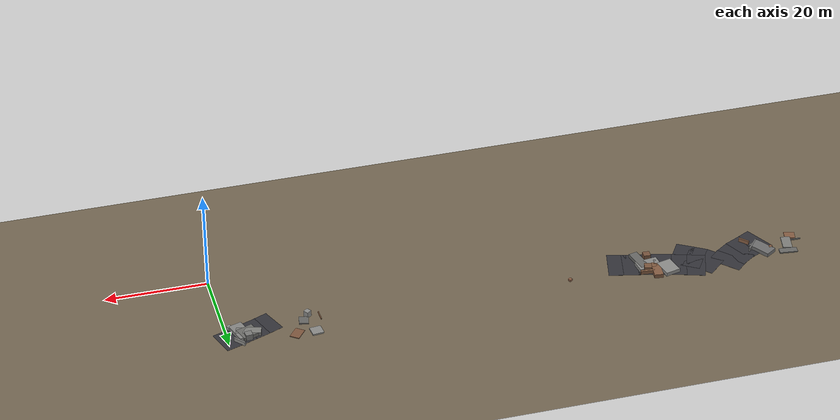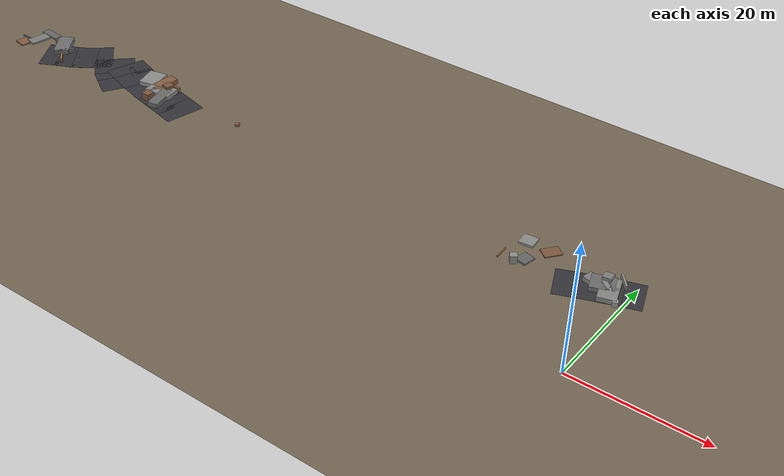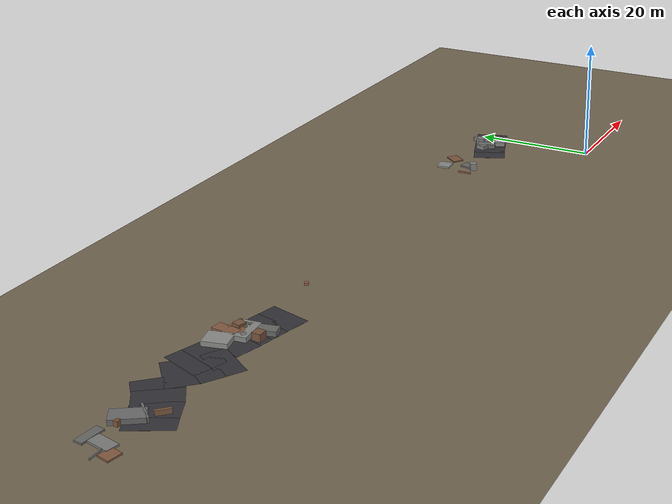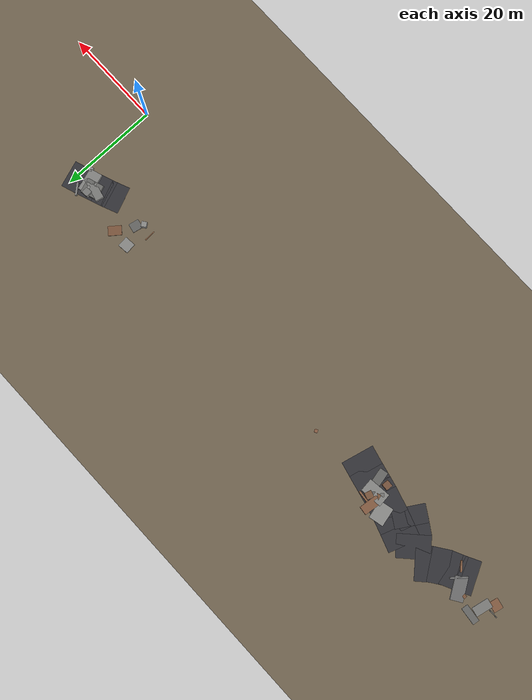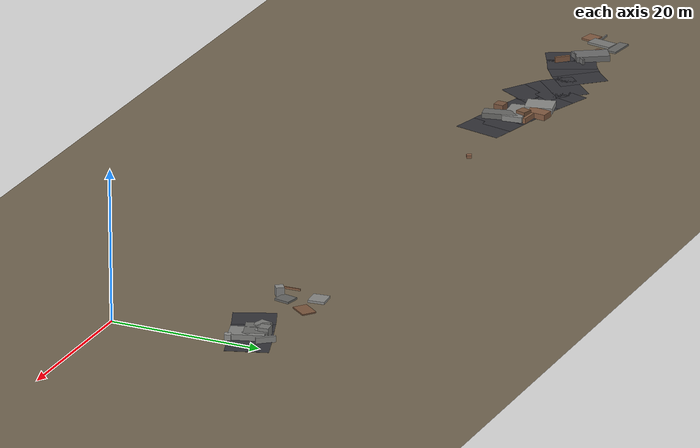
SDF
<sdf version="1.6">
 <world name="navitas_arena">
  <model name="ground_plane">
   <static>true</static>
   <link name="link">
    <collision name="collision">
     <geometry><plane><normal>0 0 1</normal><size>400 400</size></plane></geometry>
     <surface><friction><ode><mu>0.550</mu><mu2>0.550</mu2></ode></friction></surface>
    </collision>
    <visual name="visual">
     <cast_shadows>false</cast_shadows>
     <geometry><plane><normal>0 0 1</normal><size>400 400</size></plane></geometry>
     <material><ambient>0.450 0.400 0.320 1</ambient><diffuse>0.450 0.400 0.320 1</diffuse></material>
    </visual>
   </link>
  </model>
  <model name="road_kolay_1_18">
   <static>true</static>
   <pose>-105.693 15.135 0.040 0 0 0.486</pose>
   <link name="link">
    <collision name="col"><geometry><box><size>3.630 6.600 0.020</size></box></geometry></collision>
    <visual name="vis">
     <geometry><box><size>3.630 6.600 0.020</size></box></geometry>
     <material><ambient>0.20 0.20 0.22 1</ambient><diffuse>0.20 0.20 0.22 1</diffuse></material>
    </visual>
   </link>
  </model>
  <model name="road_kolay_1_19">
   <static>true</static>
   <pose>-103.295 16.352 0.040 0 0 0.452</pose>
   <link name="link">
    <collision name="col"><geometry><box><size>3.551 6.600 0.020</size></box></geometry></collision>
    <visual name="vis">
     <geometry><box><size>3.551 6.600 0.020</size></box></geometry>
     <material><ambient>0.20 0.20 0.22 1</ambient><diffuse>0.20 0.20 0.22 1</diffuse></material>
    </visual>
   </link>
  </model>
  <model name="road_kolay_1_20">
   <static>true</static>
   <pose>-100.968 17.729 0.040 0 0 0.613</pose>
   <link name="link">
    <collision name="col"><geometry><box><size>3.675 6.600 0.020</size></box></geometry></collision>
    <visual name="vis">
     <geometry><box><size>3.675 6.600 0.020</size></box></geometry>
     <material><ambient>0.20 0.20 0.22 1</ambient><diffuse>0.20 0.20 0.22 1</diffuse></material>
    </visual>
   </link>
  </model>
  <model name="road_kolay_1_21">
   <static>true</static>
   <pose>-98.831 19.461 0.040 0 0 0.750</pose>
   <link name="link">
    <collision name="col"><geometry><box><size>3.639 6.600 0.020</size></box></geometry></collision>
    <visual name="vis">
     <geometry><box><size>3.639 6.600 0.020</size></box></geometry>
     <material><ambient>0.20 0.20 0.22 1</ambient><diffuse>0.20 0.20 0.22 1</diffuse></material>
    </visual>
   </link>
  </model>
  <model name="road_kolay_2_14">
   <static>true</static>
   <pose>-90.728 15.444 0.040 0 0 2.588</pose>
   <link name="link">
    <collision name="col"><geometry><box><size>3.649 6.600 0.020</size></box></geometry></collision>
    <visual name="vis">
     <geometry><box><size>3.649 6.600 0.020</size></box></geometry>
     <material><ambient>0.20 0.20 0.22 1</ambient><diffuse>0.20 0.20 0.22 1</diffuse></material>
    </visual>
   </link>
  </model>
  <model name="road_kolay_2_15">
   <static>true</static>
   <pose>-92.929 16.833 0.040 0 0 2.568</pose>
   <link name="link">
    <collision name="col"><geometry><box><size>3.355 6.600 0.020</size></box></geometry></collision>
    <visual name="vis">
     <geometry><box><size>3.355 6.600 0.020</size></box></geometry>
     <material><ambient>0.20 0.20 0.22 1</ambient><diffuse>0.20 0.20 0.22 1</diffuse></material>
    </visual>
   </link>
  </model>
  <model name="road_kolay_2_16">
   <static>true</static>
   <pose>-95.205 18.815 0.040 0 0 2.329</pose>
   <link name="link">
    <collision name="col"><geometry><box><size>4.523 6.600 0.020</size></box></geometry></collision>
    <visual name="vis">
     <geometry><box><size>4.523 6.600 0.020</size></box></geometry>
     <material><ambient>0.20 0.20 0.22 1</ambient><diffuse>0.20 0.20 0.22 1</diffuse></material>
    </visual>
   </link>
  </model>
  <model name="road_kolay_3_18">
   <static>true</static>
   <pose>-77.557 15.296 0.040 0 0 2.903</pose>
   <link name="link">
    <collision name="col"><geometry><box><size>3.758 6.600 0.020</size></box></geometry></collision>
    <visual name="vis">
     <geometry><box><size>3.758 6.600 0.020</size></box></geometry>
     <material><ambient>0.20 0.20 0.22 1</ambient><diffuse>0.20 0.20 0.22 1</diffuse></material>
    </visual>
   </link>
  </model>
  <model name="road_kolay_3_19">
   <static>true</static>
   <pose>-80.368 15.952 0.040 0 0 2.921</pose>
   <link name="link">
    <collision name="col"><geometry><box><size>3.816 6.600 0.020</size></box></geometry></collision>
    <visual name="vis">
     <geometry><box><size>3.816 6.600 0.020</size></box></geometry>
     <material><ambient>0.20 0.20 0.22 1</ambient><diffuse>0.20 0.20 0.22 1</diffuse></material>
    </visual>
   </link>
  </model>
  <model name="road_kolay_3_20">
   <static>true</static>
   <pose>-83.132 16.579 0.040 0 0 2.916</pose>
   <link name="link">
    <collision name="col"><geometry><box><size>3.652 6.600 0.020</size></box></geometry></collision>
    <visual name="vis">
     <geometry><box><size>3.652 6.600 0.020</size></box></geometry>
     <material><ambient>0.20 0.20 0.22 1</ambient><diffuse>0.20 0.20 0.22 1</diffuse></material>
    </visual>
   </link>
  </model>
  <model name="road_kolay_3_21">
   <static>true</static>
   <pose>-86.341 17.420 0.040 0 0 2.864</pose>
   <link name="link">
    <collision name="col"><geometry><box><size>4.784 6.600 0.020</size></box></geometry></collision>
    <visual name="vis">
     <geometry><box><size>4.784 6.600 0.020</size></box></geometry>
     <material><ambient>0.20 0.20 0.22 1</ambient><diffuse>0.20 0.20 0.22 1</diffuse></material>
    </visual>
   </link>
  </model>
  <model name="road_kolay_3_22">
   <static>true</static>
   <pose>-89.613 18.411 0.040 0 0 2.826</pose>
   <link name="link">
    <collision name="col"><geometry><box><size>3.855 6.600 0.020</size></box></geometry></collision>
    <visual name="vis">
     <geometry><box><size>3.855 6.600 0.020</size></box></geometry>
     <material><ambient>0.20 0.20 0.22 1</ambient><diffuse>0.20 0.20 0.22 1</diffuse></material>
    </visual>
   </link>
  </model>
  <model name="road_kolay_3_23">
   <static>true</static>
   <pose>-92.291 19.305 0.040 0 0 2.813</pose>
   <link name="link">
    <collision name="col"><geometry><box><size>3.592 6.600 0.020</size></box></geometry></collision>
    <visual name="vis">
     <geometry><box><size>3.592 6.600 0.020</size></box></geometry>
     <material><ambient>0.20 0.20 0.22 1</ambient><diffuse>0.20 0.20 0.22 1</diffuse></material>
    </visual>
   </link>
  </model>
  <model name="blk_kolay_1_1_0">
   <static>true</static>
   <pose>-103.687 14.803 0.400 0 0 2.322</pose>
   <link name="link">
    <collision name="col"><geometry><box><size>2.118 0.325 0.800</size></box></geometry></collision>
    <visual name="vis">
     <geometry><box><size>2.118 0.325 0.800</size></box></geometry>
     <material><ambient>0.54 0.38 0.27 1</ambient><diffuse>0.54 0.38 0.27 1</diffuse></material>
    </visual>
   </link>
  </model>
  <model name="blk_kolay_1_1_3">
   <static>true</static>
   <pose>-107.957 18.149 0.400 0 0 3.117</pose>
   <link name="link">
    <collision name="col"><geometry><box><size>0.652 0.652 0.800</size></box></geometry></collision>
    <visual name="vis">
     <geometry><box><size>0.652 0.652 0.800</size></box></geometry>
     <material><ambient>0.49 0.34 0.24 1</ambient><diffuse>0.49 0.34 0.24 1</diffuse></material>
    </visual>
   </link>
  </model>
  <model name="blk_kolay_1_1_5">
   <static>true</static>
   <pose>-104.885 16.530 0.400 0 0 0.872</pose>
   <link name="link">
    <collision name="col"><geometry><box><size>3.456 0.306 0.800</size></box></geometry></collision>
    <visual name="vis">
     <geometry><box><size>3.456 0.306 0.800</size></box></geometry>
     <material><ambient>0.44 0.44 0.44 1</ambient><diffuse>0.44 0.44 0.44 1</diffuse></material>
    </visual>
   </link>
  </model>
  <model name="blk_kolay_1_1_7">
   <static>true</static>
   <pose>-106.340 17.936 0.400 0 0 2.149</pose>
   <link name="link">
    <collision name="col"><geometry><box><size>4.534 2.448 0.800</size></box></geometry></collision>
    <visual name="vis">
     <geometry><box><size>4.534 2.448 0.800</size></box></geometry>
     <material><ambient>0.43 0.43 0.43 1</ambient><diffuse>0.43 0.43 0.43 1</diffuse></material>
    </visual>
   </link>
  </model>
  <model name="blk_kolay_3_1_0">
   <static>true</static>
   <pose>-84.266 19.444 0.400 0 0 1.458</pose>
   <link name="link">
    <collision name="col"><geometry><box><size>3.729 1.753 0.800</size></box></geometry></collision>
    <visual name="vis">
     <geometry><box><size>3.729 1.753 0.800</size></box></geometry>
     <material><ambient>0.52 0.36 0.26 1</ambient><diffuse>0.52 0.36 0.26 1</diffuse></material>
    </visual>
   </link>
  </model>
  <model name="blk_kolay_3_1_1">
   <static>true</static>
   <pose>-81.869 15.637 0.400 0 0 1.787</pose>
   <link name="link">
    <collision name="col"><geometry><box><size>4.878 1.731 0.800</size></box></geometry></collision>
    <visual name="vis">
     <geometry><box><size>4.878 1.731 0.800</size></box></geometry>
     <material><ambient>0.41 0.41 0.40 1</ambient><diffuse>0.41 0.41 0.40 1</diffuse></material>
    </visual>
   </link>
  </model>
  <model name="blk_kolay_3_1_3">
   <static>true</static>
   <pose>-83.164 17.272 0.400 0 0 0.113</pose>
   <link name="link">
    <collision name="col"><geometry><box><size>4.510 2.726 0.800</size></box></geometry></collision>
    <visual name="vis">
     <geometry><box><size>4.510 2.726 0.800</size></box></geometry>
     <material><ambient>0.53 0.53 0.52 1</ambient><diffuse>0.53 0.53 0.52 1</diffuse></material>
    </visual>
   </link>
  </model>
  <model name="blk_kolay_3_1_4">
   <static>true</static>
   <pose>-82.708 18.442 0.615 0 0 1.275</pose>
   <link name="link">
    <collision name="col"><geometry><box><size>1.364 1.364 1.229</size></box></geometry></collision>
    <visual name="vis">
     <geometry><box><size>1.364 1.364 1.229</size></box></geometry>
     <material><ambient>0.48 0.34 0.24 1</ambient><diffuse>0.48 0.34 0.24 1</diffuse></material>
    </visual>
   </link>
  </model>
  <model name="blk_kolay_3_1_6">
   <static>true</static>
   <pose>-84.388 16.665 0.400 0 0 2.430</pose>
   <link name="link">
    <collision name="col"><geometry><box><size>0.746 0.746 0.800</size></box></geometry></collision>
    <visual name="vis">
     <geometry><box><size>0.746 0.746 0.800</size></box></geometry>
     <material><ambient>0.46 0.46 0.45 1</ambient><diffuse>0.46 0.46 0.45 1</diffuse></material>
    </visual>
   </link>
  </model>
  <model name="blk_kolay_3_1_7">
   <static>true</static>
   <pose>-83.668 14.729 0.625 0 0 3.085</pose>
   <link name="link">
    <collision name="col"><geometry><box><size>1.376 1.376 1.251</size></box></geometry></collision>
    <visual name="vis">
     <geometry><box><size>1.376 1.376 1.251</size></box></geometry>
     <material><ambient>0.47 0.33 0.24 1</ambient><diffuse>0.47 0.33 0.24 1</diffuse></material>
    </visual>
   </link>
  </model>
  <model name="blk_kolay_3_1_8">
   <static>true</static>
   <pose>-83.737 17.808 0.400 0 0 1.852</pose>
   <link name="link">
    <collision name="col"><geometry><box><size>1.571 1.571 0.800</size></box></geometry></collision>
    <visual name="vis">
     <geometry><box><size>1.571 1.571 0.800</size></box></geometry>
     <material><ambient>0.50 0.35 0.25 1</ambient><diffuse>0.50 0.35 0.25 1</diffuse></material>
    </visual>
   </link>
  </model>
  <model name="blk_kolay_3_1_9">
   <static>true</static>
   <pose>-82.363 19.381 0.400 0 0 3.043</pose>
   <link name="link">
    <collision name="col"><geometry><box><size>2.678 0.372 0.800</size></box></geometry></collision>
    <visual name="vis">
     <geometry><box><size>2.678 0.372 0.800</size></box></geometry>
     <material><ambient>0.54 0.38 0.27 1</ambient><diffuse>0.54 0.38 0.27 1</diffuse></material>
    </visual>
   </link>
  </model>
  <model name="deb_kolay_2">
   <static>true</static>
   <pose>-113.128 14.971 0.118 0 0 2.930</pose>
   <link name="link">
    <collision name="col"><geometry><box><size>2.070 1.898 0.235</size></box></geometry></collision>
    <visual name="vis">
     <geometry><box><size>2.070 1.898 0.235</size></box></geometry>
     <material><ambient>0.52 0.36 0.26 1</ambient><diffuse>0.52 0.36 0.26 1</diffuse></material>
    </visual>
   </link>
  </model>
  <model name="deb_kolay_6">
   <static>true</static>
   <pose>-111.708 17.113 0.149 0 0 1.371</pose>
   <link name="link">
    <collision name="col"><geometry><box><size>3.456 1.830 0.299</size></box></geometry></collision>
    <visual name="vis">
     <geometry><box><size>3.456 1.830 0.299</size></box></geometry>
     <material><ambient>0.49 0.49 0.48 1</ambient><diffuse>0.49 0.49 0.48 1</diffuse></material>
    </visual>
   </link>
  </model>
  <model name="deb_kolay_14">
   <static>true</static>
   <pose>-113.574 16.425 0.129 0 0 3.134</pose>
   <link name="link">
    <collision name="col"><geometry><box><size>2.527 0.168 0.258</size></box></geometry></collision>
    <visual name="vis">
     <geometry><box><size>2.527 0.168 0.258</size></box></geometry>
     <material><ambient>0.45 0.45 0.44 1</ambient><diffuse>0.45 0.45 0.44 1</diffuse></material>
    </visual>
   </link>
  </model>
  <model name="deb_kolay_98">
   <static>true</static>
   <pose>-111.144 19.599 0.132 0 0 3.029</pose>
   <link name="link">
    <collision name="col"><geometry><box><size>3.537 1.355 0.264</size></box></geometry></collision>
    <visual name="vis">
     <geometry><box><size>3.537 1.355 0.264</size></box></geometry>
     <material><ambient>0.41 0.41 0.40 1</ambient><diffuse>0.41 0.41 0.40 1</diffuse></material>
    </visual>
   </link>
  </model>
  <model name="deb_kolay_109">
   <static>true</static>
   <pose>-67.347 17.564 0.199 0 0 0.492</pose>
   <link name="link">
    <collision name="col"><geometry><box><size>0.650 0.650 0.398</size></box></geometry></collision>
    <visual name="vis">
     <geometry><box><size>0.650 0.650 0.398</size></box></geometry>
     <material><ambient>0.54 0.37 0.27 1</ambient><diffuse>0.54 0.37 0.27 1</diffuse></material>
    </visual>
   </link>
  </model>
  <model name="chic_kolay_3">
   <static>true</static>
   <pose>-86.673 19.066 0.400 0 0 1.807</pose>
   <link name="link">
    <collision name="col"><geometry><box><size>3.729 2.990 0.800</size></box></geometry></collision>
    <visual name="vis">
     <geometry><box><size>3.729 2.990 0.800</size></box></geometry>
     <material><ambient>0.55 0.55 0.54 1</ambient><diffuse>0.55 0.55 0.54 1</diffuse></material>
    </visual>
   </link>
  </model>
  <model name="road_orta_1_19">
   <static>true</static>
   <pose>-8.074 15.455 0.040 0 0 0.401</pose>
   <link name="link">
    <collision name="col"><geometry><box><size>3.672 5.500 0.020</size></box></geometry></collision>
    <visual name="vis">
     <geometry><box><size>3.672 5.500 0.020</size></box></geometry>
     <material><ambient>0.20 0.20 0.22 1</ambient><diffuse>0.20 0.20 0.22 1</diffuse></material>
    </visual>
   </link>
  </model>
  <model name="road_orta_1_20">
   <static>true</static>
   <pose>-5.453 16.499 0.040 0 0 0.358</pose>
   <link name="link">
    <collision name="col"><geometry><box><size>3.771 5.500 0.020</size></box></geometry></collision>
    <visual name="vis">
     <geometry><box><size>3.771 5.500 0.020</size></box></geometry>
     <material><ambient>0.20 0.20 0.22 1</ambient><diffuse>0.20 0.20 0.22 1</diffuse></material>
    </visual>
   </link>
  </model>
  <model name="road_orta_1_21">
   <static>true</static>
   <pose>-2.859 17.477 0.040 0 0 0.363</pose>
   <link name="link">
    <collision name="col"><geometry><box><size>3.572 5.500 0.020</size></box></geometry></collision>
    <visual name="vis">
     <geometry><box><size>3.572 5.500 0.020</size></box></geometry>
     <material><ambient>0.20 0.20 0.22 1</ambient><diffuse>0.20 0.20 0.22 1</diffuse></material>
    </visual>
   </link>
  </model>
  <model name="road_orta_1_22">
   <static>true</static>
   <pose>-0.262 18.411 0.040 0 0 0.328</pose>
   <link name="link">
    <collision name="col"><geometry><box><size>3.750 5.500 0.020</size></box></geometry></collision>
    <visual name="vis">
     <geometry><box><size>3.750 5.500 0.020</size></box></geometry>
     <material><ambient>0.20 0.20 0.22 1</ambient><diffuse>0.20 0.20 0.22 1</diffuse></material>
    </visual>
   </link>
  </model>
  <model name="blk_orta_1_2_0">
   <static>true</static>
   <pose>-0.968 15.296 0.400 0 0 1.977</pose>
   <link name="link">
    <collision name="col"><geometry><box><size>0.807 0.807 0.800</size></box></geometry></collision>
    <visual name="vis">
     <geometry><box><size>0.807 0.807 0.800</size></box></geometry>
     <material><ambient>0.58 0.58 0.57 1</ambient><diffuse>0.58 0.58 0.57 1</diffuse></material>
    </visual>
   </link>
  </model>
  <model name="blk_orta_1_2_1">
   <static>true</static>
   <pose>-4.253 17.395 0.400 0 0 2.898</pose>
   <link name="link">
    <collision name="col"><geometry><box><size>4.781 1.689 0.800</size></box></geometry></collision>
    <visual name="vis">
     <geometry><box><size>4.781 1.689 0.800</size></box></geometry>
     <material><ambient>0.49 0.49 0.48 1</ambient><diffuse>0.49 0.49 0.48 1</diffuse></material>
    </visual>
   </link>
  </model>
  <model name="blk_orta_1_2_2">
   <static>true</static>
   <pose>-3.549 18.090 0.400 0 0 1.570</pose>
   <link name="link">
    <collision name="col"><geometry><box><size>0.796 0.796 0.800</size></box></geometry></collision>
    <visual name="vis">
     <geometry><box><size>0.796 0.796 0.800</size></box></geometry>
     <material><ambient>0.54 0.54 0.53 1</ambient><diffuse>0.54 0.54 0.53 1</diffuse></material>
    </visual>
   </link>
  </model>
  <model name="blk_orta_1_2_3">
   <static>true</static>
   <pose>-3.939 18.899 0.633 0 0 0.096</pose>
   <link name="link">
    <collision name="col"><geometry><box><size>1.348 1.348 1.267</size></box></geometry></collision>
    <visual name="vis">
     <geometry><box><size>1.348 1.348 1.267</size></box></geometry>
     <material><ambient>0.48 0.48 0.47 1</ambient><diffuse>0.48 0.48 0.47 1</diffuse></material>
    </visual>
   </link>
  </model>
  <model name="blk_orta_1_2_4">
   <static>true</static>
   <pose>-2.050 19.906 0.400 0 0 2.271</pose>
   <link name="link">
    <collision name="col"><geometry><box><size>2.538 0.300 0.800</size></box></geometry></collision>
    <visual name="vis">
     <geometry><box><size>2.538 0.300 0.800</size></box></geometry>
     <material><ambient>0.56 0.56 0.55 1</ambient><diffuse>0.56 0.56 0.55 1</diffuse></material>
    </visual>
   </link>
  </model>
  <model name="blk_orta_1_2_6">
   <static>true</static>
   <pose>-2.772 17.085 0.400 0 0 1.882</pose>
   <link name="link">
    <collision name="col"><geometry><box><size>4.542 2.658 0.800</size></box></geometry></collision>
    <visual name="vis">
     <geometry><box><size>4.542 2.658 0.800</size></box></geometry>
     <material><ambient>0.52 0.52 0.51 1</ambient><diffuse>0.52 0.52 0.51 1</diffuse></material>
    </visual>
   </link>
  </model>
  <model name="blk_orta_1_2_7">
   <static>true</static>
   <pose>-4.055 17.724 0.400 0 0 0.336</pose>
   <link name="link">
    <collision name="col"><geometry><box><size>3.426 3.023 0.800</size></box></geometry></collision>
    <visual name="vis">
     <geometry><box><size>3.426 3.023 0.800</size></box></geometry>
     <material><ambient>0.42 0.42 0.41 1</ambient><diffuse>0.42 0.42 0.41 1</diffuse></material>
    </visual>
   </link>
  </model>
  <model name="deb_orta_23">
   <static>true</static>
   <pose>-16.120 15.027 0.607 0 0 2.197</pose>
   <link name="link">
    <collision name="col"><geometry><box><size>1.050 1.050 1.214</size></box></geometry></collision>
    <visual name="vis">
     <geometry><box><size>1.050 1.050 1.214</size></box></geometry>
     <material><ambient>0.55 0.55 0.54 1</ambient><diffuse>0.55 0.55 0.54 1</diffuse></material>
    </visual>
   </link>
  </model>
  <model name="deb_orta_35">
   <static>true</static>
   <pose>-18.361 15.661 0.132 0 0 1.609</pose>
   <link name="link">
    <collision name="col"><geometry><box><size>2.262 0.177 0.264</size></box></geometry></collision>
    <visual name="vis">
     <geometry><box><size>2.262 0.177 0.264</size></box></geometry>
     <material><ambient>0.53 0.37 0.26 1</ambient><diffuse>0.53 0.37 0.26 1</diffuse></material>
    </visual>
   </link>
  </model>
  <model name="deb_orta_57">
   <static>true</static>
   <pose>-15.086 16.370 0.135 0 0 2.942</pose>
   <link name="link">
    <collision name="col"><geometry><box><size>1.854 2.089 0.270</size></box></geometry></collision>
    <visual name="vis">
     <geometry><box><size>1.854 2.089 0.270</size></box></geometry>
     <material><ambient>0.40 0.40 0.39 1</ambient><diffuse>0.40 0.40 0.39 1</diffuse></material>
    </visual>
   </link>
  </model>
  <model name="deb_orta_78">
   <static>true</static>
   <pose>-16.712 20.137 0.157 0 0 0.102</pose>
   <link name="link">
    <collision name="col"><geometry><box><size>2.223 2.174 0.313</size></box></geometry></collision>
    <visual name="vis">
     <geometry><box><size>2.223 2.174 0.313</size></box></geometry>
     <material><ambient>0.54 0.54 0.53 1</ambient><diffuse>0.54 0.54 0.53 1</diffuse></material>
    </visual>
   </link>
  </model>
  <model name="deb_orta_112">
   <static>true</static>
   <pose>-13.027 19.918 0.087 0 0 0.917</pose>
   <link name="link">
    <collision name="col"><geometry><box><size>2.663 1.889 0.174</size></box></geometry></collision>
    <visual name="vis">
     <geometry><box><size>2.663 1.889 0.174</size></box></geometry>
     <material><ambient>0.49 0.34 0.24 1</ambient><diffuse>0.49 0.34 0.24 1</diffuse></material>
    </visual>
   </link>
  </model>
 </world>
</sdf>
